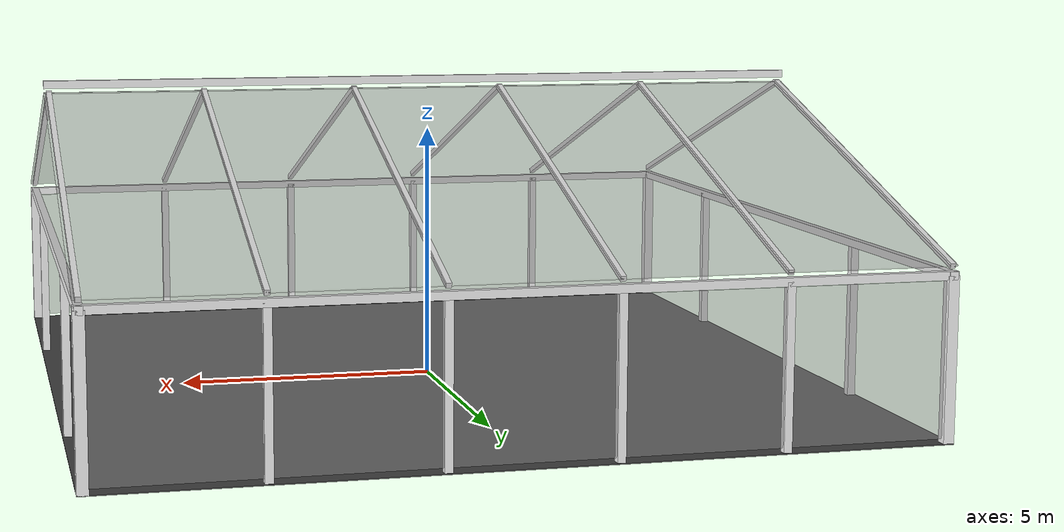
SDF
<?xml version="1.0" ?>
<sdf version="1.6">
  <model name="greenhouse">
    <static>true</static>
    <pose>0 0 0 0 0 0</pose>

    <link name="floor">
      <visual name="floor_vis">
        <pose>0 0 0.01 0 0 0</pose>
        <geometry><box><size>15.2 16.2 0.02</size></box></geometry>
        <material><script><name>Gazebo/DarkGrey</name></script></material>
      </visual>
      <collision name="floor_col">
        <pose>0 0 0.01 0 0 0</pose>
        <geometry><box><size>15.2 16.2 0.02</size></box></geometry>
      </collision>
    </link>

    <link name="white_pillars">

      <visual name="p_n1"><pose>-7.5 8 1.5 0 0 0</pose><geometry><box><size>0.2 0.2 3.0</size></box></geometry><material><script><name>Gazebo/White</name></script></material></visual>
      <visual name="p_n2"><pose>-4.5 8 1.5 0 0 0</pose><geometry><box><size>0.15 0.15 3.0</size></box></geometry><material><script><name>Gazebo/White</name></script></material></visual>
      <visual name="p_n3"><pose>-1.5 8 1.5 0 0 0</pose><geometry><box><size>0.15 0.15 3.0</size></box></geometry><material><script><name>Gazebo/White</name></script></material></visual>
      <visual name="p_n5"><pose>1.5 8 1.5 0 0 0</pose><geometry><box><size>0.15 0.15 3.0</size></box></geometry><material><script><name>Gazebo/White</name></script></material></visual>
      <visual name="p_n6"><pose>4.5 8 1.5 0 0 0</pose><geometry><box><size>0.15 0.15 3.0</size></box></geometry><material><script><name>Gazebo/White</name></script></material></visual>
      <visual name="p_n7"><pose>7.5 8 1.5 0 0 0</pose><geometry><box><size>0.2 0.2 3.0</size></box></geometry><material><script><name>Gazebo/White</name></script></material></visual>

      <visual name="p_s1"><pose>-7.5 -8 1.5 0 0 0</pose><geometry><box><size>0.2 0.2 3.0</size></box></geometry><material><script><name>Gazebo/White</name></script></material></visual>
      <visual name="p_s2"><pose>-4.5 -8 1.5 0 0 0</pose><geometry><box><size>0.15 0.15 3.0</size></box></geometry><material><script><name>Gazebo/White</name></script></material></visual>
      <visual name="p_s3"><pose>-1.5 -8 1.5 0 0 0</pose><geometry><box><size>0.15 0.15 3.0</size></box></geometry><material><script><name>Gazebo/White</name></script></material></visual>
      <visual name="p_s5"><pose>1.5 -8 1.5 0 0 0</pose><geometry><box><size>0.15 0.15 3.0</size></box></geometry><material><script><name>Gazebo/White</name></script></material></visual>
      <visual name="p_s6"><pose>4.5 -8 1.5 0 0 0</pose><geometry><box><size>0.15 0.15 3.0</size></box></geometry><material><script><name>Gazebo/White</name></script></material></visual>
      <visual name="p_s7"><pose>7.5 -8 1.5 0 0 0</pose><geometry><box><size>0.2 0.2 3.0</size></box></geometry><material><script><name>Gazebo/White</name></script></material></visual>

      <visual name="p_e1"><pose>7.5 4 1.5 0 0 0</pose><geometry><box><size>0.15 0.15 3.0</size></box></geometry><material><script><name>Gazebo/White</name></script></material></visual>
      <visual name="p_e3"><pose>7.5 -4 1.5 0 0 0</pose><geometry><box><size>0.15 0.15 3.0</size></box></geometry><material><script><name>Gazebo/White</name></script></material></visual>

      <visual name="p_w1"><pose>-7.5 4 1.5 0 0 0</pose><geometry><box><size>0.15 0.15 3.0</size></box></geometry><material><script><name>Gazebo/White</name></script></material></visual>
      <visual name="p_w2"><pose>-7.5 -4 1.5 0 0 0</pose><geometry><box><size>0.15 0.15 3.0</size></box></geometry><material><script><name>Gazebo/White</name></script></material></visual>

      <visual name="beam_n"><pose>0 8 3.0 0 0 0</pose><geometry><box><size>15.2 0.15 0.15</size></box></geometry><material><script><name>Gazebo/White</name></script></material></visual>
      <visual name="beam_s"><pose>0 -8 3.0 0 0 0</pose><geometry><box><size>15.2 0.15 0.15</size></box></geometry><material><script><name>Gazebo/White</name></script></material></visual>
      <visual name="beam_e"><pose>7.5 0 3.0 0 0 0</pose><geometry><box><size>0.15 16.2 0.15</size></box></geometry><material><script><name>Gazebo/White</name></script></material></visual>
      <visual name="beam_w"><pose>-7.5 0 3.0 0 0 0</pose><geometry><box><size>0.15 16.2 0.15</size></box></geometry><material><script><name>Gazebo/White</name></script></material></visual>

      <collision name="col_n"><pose>0 8 1.5 0 0 0</pose><geometry><box><size>15.0 0.2 3.0</size></box></geometry></collision>
      <collision name="col_s"><pose>0 -8 1.5 0 0 0</pose><geometry><box><size>15.0 0.2 3.0</size></box></geometry></collision>
      <collision name="col_e1"><pose>7.5 4 1.5 0 0 0</pose><geometry><box><size>0.2 8.0 3.0</size></box></geometry></collision>
      <collision name="col_e2"><pose>7.5 -4 1.5 0 0 0</pose><geometry><box><size>0.2 8.0 3.0</size></box></geometry></collision>
      <collision name="col_w1"><pose>-7.5 4 1.5 0 0 0</pose><geometry><box><size>0.2 8.0 3.0</size></box></geometry></collision>
      <collision name="col_w2"><pose>-7.5 -4 1.5 0 0 0</pose><geometry><box><size>0.2 8.0 3.0</size></box></geometry></collision>
    </link>

    <link name="roof_frame">
      <visual name="ridge_beam"><pose>0 0 6.0 0 0 0</pose><geometry><box><size>15.2 0.15 0.15</size></box></geometry><material><script><name>Gazebo/White</name></script></material></visual>

      <visual name="rafter_L1"><pose>-7.5 4 4.5 -0.32 0 0</pose><geometry><box><size>0.1 8.5 0.1</size></box></geometry><material><script><name>Gazebo/White</name></script></material></visual>
      <visual name="rafter_L2"><pose>-4.5 4 4.5 -0.32 0 0</pose><geometry><box><size>0.1 8.5 0.1</size></box></geometry><material><script><name>Gazebo/White</name></script></material></visual>
      <visual name="rafter_L3"><pose>-1.5 4 4.5 -0.32 0 0</pose><geometry><box><size>0.1 8.5 0.1</size></box></geometry><material><script><name>Gazebo/White</name></script></material></visual>
      <visual name="rafter_L5"><pose>1.5 4 4.5 -0.32 0 0</pose><geometry><box><size>0.1 8.5 0.1</size></box></geometry><material><script><name>Gazebo/White</name></script></material></visual>
      <visual name="rafter_L6"><pose>4.5 4 4.5 -0.32 0 0</pose><geometry><box><size>0.1 8.5 0.1</size></box></geometry><material><script><name>Gazebo/White</name></script></material></visual>
      <visual name="rafter_L7"><pose>7.5 4 4.5 -0.32 0 0</pose><geometry><box><size>0.1 8.5 0.1</size></box></geometry><material><script><name>Gazebo/White</name></script></material></visual>

      <visual name="rafter_R1"><pose>-7.5 -4 4.5 0.32 0 0</pose><geometry><box><size>0.1 8.5 0.1</size></box></geometry><material><script><name>Gazebo/White</name></script></material></visual>
      <visual name="rafter_R2"><pose>-4.5 -4 4.5 0.32 0 0</pose><geometry><box><size>0.1 8.5 0.1</size></box></geometry><material><script><name>Gazebo/White</name></script></material></visual>
      <visual name="rafter_R3"><pose>-1.5 -4 4.5 0.32 0 0</pose><geometry><box><size>0.1 8.5 0.1</size></box></geometry><material><script><name>Gazebo/White</name></script></material></visual>
      <visual name="rafter_R5"><pose>1.5 -4 4.5 0.32 0 0</pose><geometry><box><size>0.1 8.5 0.1</size></box></geometry><material><script><name>Gazebo/White</name></script></material></visual>
      <visual name="rafter_R6"><pose>4.5 -4 4.5 0.32 0 0</pose><geometry><box><size>0.1 8.5 0.1</size></box></geometry><material><script><name>Gazebo/White</name></script></material></visual>
      <visual name="rafter_R7"><pose>7.5 -4 4.5 0.32 0 0</pose><geometry><box><size>0.1 8.5 0.1</size></box></geometry><material><script><name>Gazebo/White</name></script></material></visual>
    </link>

    <link name="glass_shell">
      <visual name="glass_n">
        <pose>0 8 1.5 0 0 0</pose><geometry><box><size>15.0 0.05 2.8</size></box></geometry>
        <material><script><name>Gazebo/GreyTransparent</name></script></material>
      </visual>
      <visual name="glass_s">
        <pose>0 -8 1.5 0 0 0</pose><geometry><box><size>15.0 0.05 2.8</size></box></geometry>
        <material><script><name>Gazebo/GreyTransparent</name></script></material>
      </visual>

      <visual name="roof_L">
        <pose>0 4 4.5 -0.32 0 0</pose>
        <geometry><box><size>15.2 8.5 0.02</size></box></geometry>
        <material><script><name>Gazebo/GreyTransparent</name></script></material>
      </visual>
      <visual name="roof_R">
        <pose>0 -4 4.5 0.32 0 0</pose>
        <geometry><box><size>15.2 8.5 0.02</size></box></geometry>
        <material><script><name>Gazebo/GreyTransparent</name></script></material>
      </visual>
    </link>

  </model>
</sdf>
